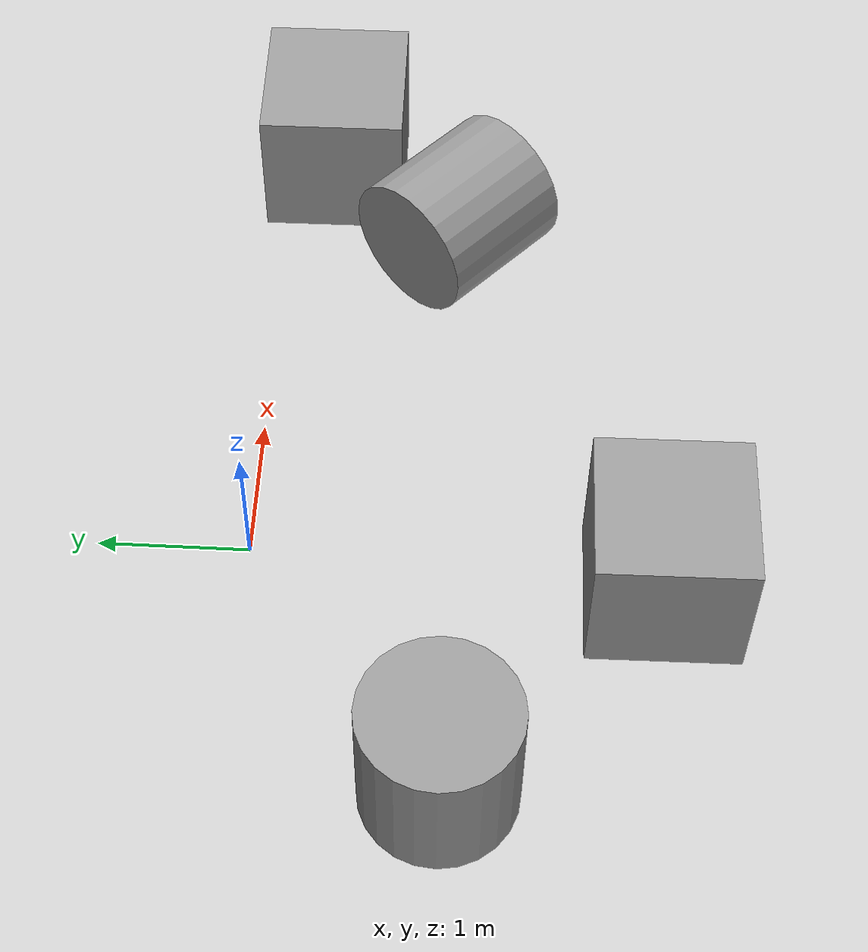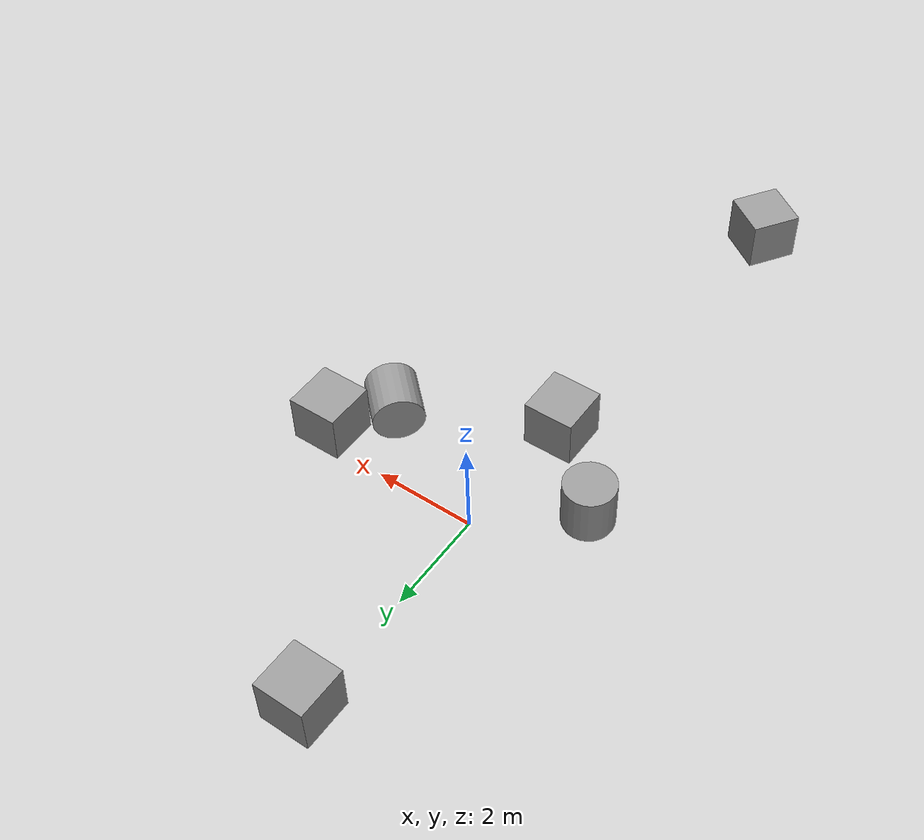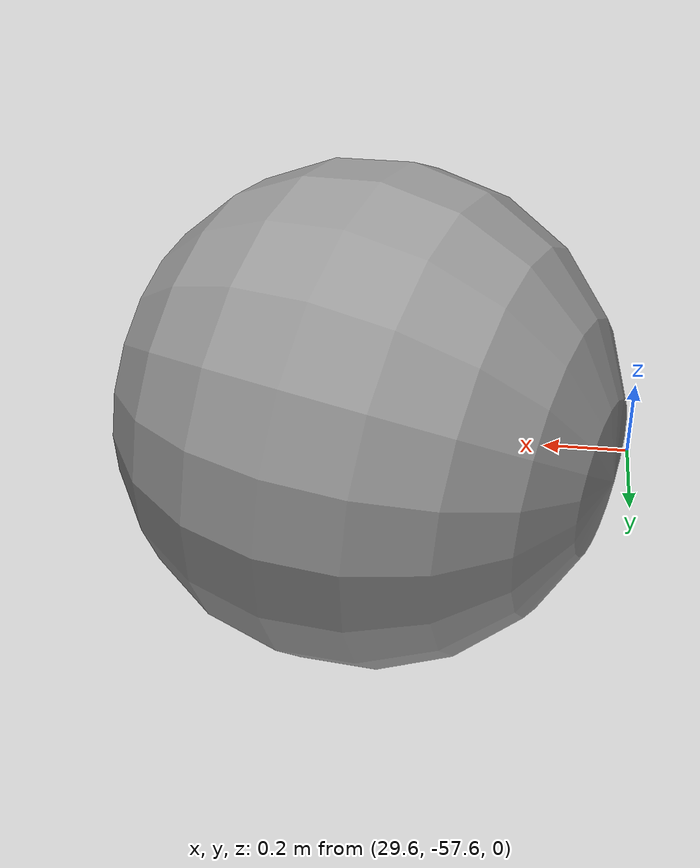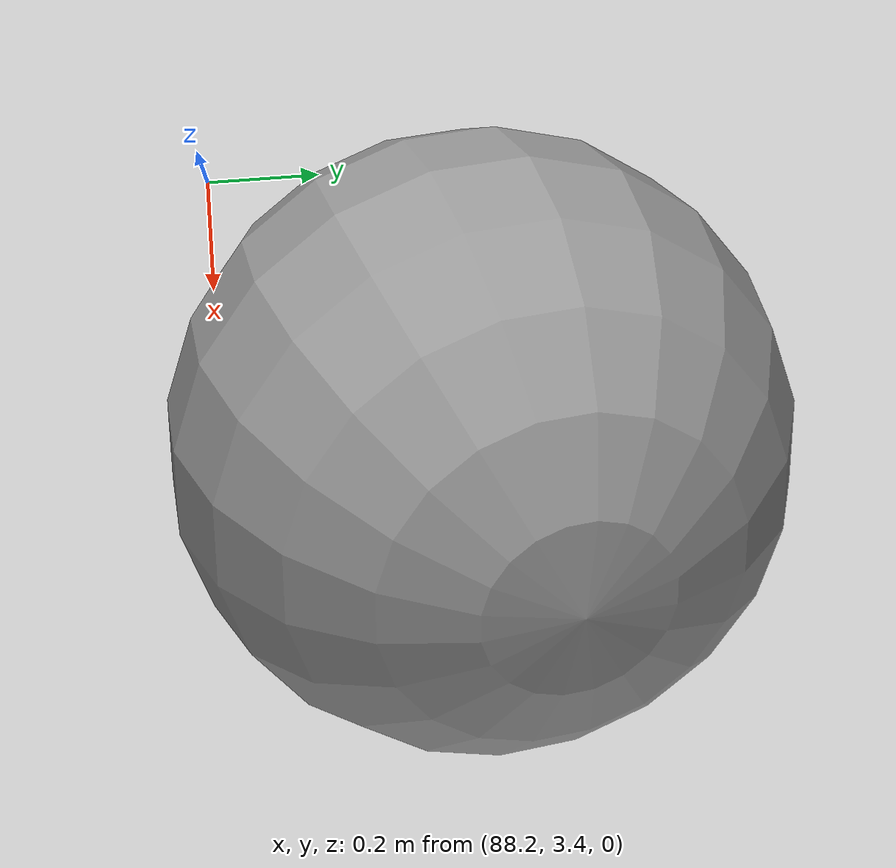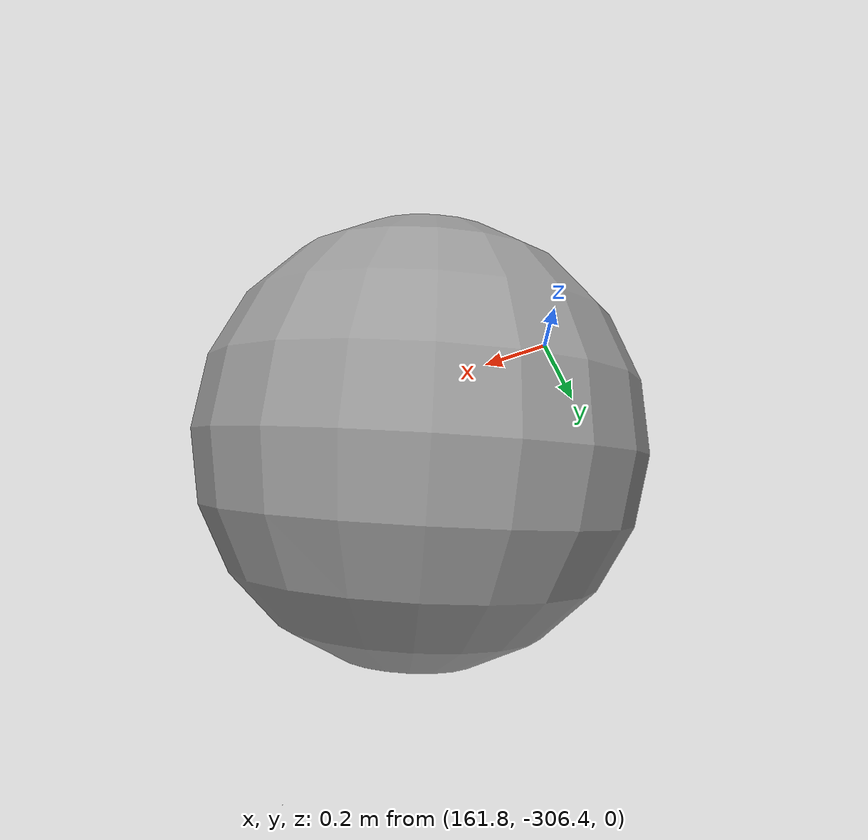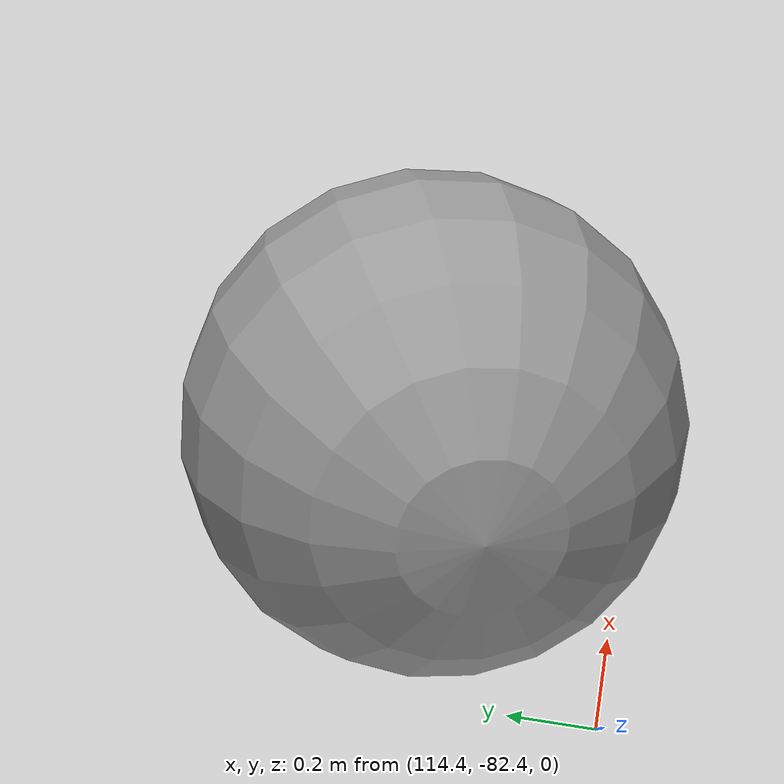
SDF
<sdf version="1.6">
 <world name="default">
  <light name="sun" type="directional">
   <pose>0 0 10 0 -0 0</pose>
   <diffuse>0.8 0.8 0.8 1</diffuse>
   <specular>0.2 0.2 0.2 1</specular>
   <attenuation>
    <range>1000</range>
    <constant>0.9</constant>
    <linear>0.01</linear>
    <quadratic>0.001</quadratic>
   </attenuation>
   <direction>-0.5 0.1 -0.9</direction>
  </light>
  <model name="ground_plane">
   <static>1</static>
   <link name="link">
    <collision name="collision">
     <geometry><plane><normal>0 0 1</normal><size>100 100</size></plane></geometry>
     <surface><friction><ode><mu>100</mu><mu2>50</mu2></ode></friction></surface>
    </collision>
    <visual name="visual">
     <cast_shadows>0</cast_shadows>
     <geometry><plane><normal>0 0 1</normal><size>100 100</size></plane></geometry>
     <material>
      <script><uri>file://media/materials/scripts/gazebo.material</uri><name>Gazebo/Grey</name></script>
     </material>
    </visual>
   </link>
  </model>
  <gravity>0 0 -9.8</gravity>
  <magnetic_field>6e-06 2.3e-05 -4.2e-05</magnetic_field>
  <atmosphere type="adiabatic"/>
  <physics name="default_physics" default="0" type="ode">
   <max_step_size>0.001</max_step_size>
   <real_time_factor>1</real_time_factor>
   <real_time_update_rate>1000</real_time_update_rate>
  </physics>
  <scene><ambient>0.4 0.4 0.4 1</ambient><background>0.7 0.7 0.7 1</background><shadows>1</shadows></scene>
  <spherical_coordinates>
   <surface_model>EARTH_WGS84</surface_model>
   <latitude_deg>0</latitude_deg>
   <longitude_deg>0</longitude_deg>
   <elevation>0</elevation>
   <heading_deg>0</heading_deg>
  </spherical_coordinates>
  <model name="unit_box">
   <pose>-0.008882 4.52766 0.5 0 -0 0</pose>
   <link name="link">
    <inertial>
     <mass>1</mass>
     <inertia>
      <ixx>0.166667</ixx>
      <ixy>0</ixy>
      <ixz>0</ixz>
      <iyy>0.166667</iyy>
      <iyz>0</iyz>
      <izz>0.166667</izz>
     </inertia>
    </inertial>
    <collision name="collision"><geometry><box><size>1 1 1</size></box></geometry></collision>
    <visual name="visual">
     <geometry><box><size>1 1 1</size></box></geometry>
     <material>
      <script><name>Gazebo/Grey</name><uri>file://media/materials/scripts/gazebo.material</uri></script>
     </material>
    </visual>
   </link>
   <plugin name="animator" filename="libgazebo_tochanek_animator.so">
    <update_rate>100</update_rate>
    <cv>
     <point><x>0.0</x><y>5.0</y><z>0.5</z></point>
     <point><x>1.0</x><y>-1.0</y><z>0.5</z></point>
     <point><x>0.0</x><y>2.0</y><z>0.5</z></point>
    </cv>
    <total_time>10.0</total_time>
   </plugin>
  </model>
  <model name="unit_sphere">
   <pose>114.929 -81.9585 0.5 2.6252 0.448511 2.66328</pose>
   <link name="link">
    <inertial>
     <mass>1</mass>
     <inertia><ixx>0.1</ixx><ixy>0</ixy><ixz>0</ixz><iyy>0.1</iyy><iyz>0</iyz><izz>0.1</izz></inertia>
    </inertial>
    <collision name="collision"><geometry><sphere><radius>0.5</radius></sphere></geometry></collision>
    <visual name="visual">
     <geometry><sphere><radius>0.5</radius></sphere></geometry>
     <material>
      <script><name>Gazebo/Grey</name><uri>file://media/materials/scripts/gazebo.material</uri></script>
     </material>
    </visual>
   </link>
  </model>
  <model name="unit_sphere_0">
   <pose>88.794 3.84896 0.5 -2.69681 0.698597 1.00368</pose>
   <link name="link">
    <inertial>
     <mass>1</mass>
     <inertia><ixx>0.1</ixx><ixy>0</ixy><ixz>0</ixz><iyy>0.1</iyy><iyz>0</iyz><izz>0.1</izz></inertia>
    </inertial>
    <collision name="collision"><geometry><sphere><radius>0.5</radius></sphere></geometry></collision>
    <visual name="visual">
     <geometry><sphere><radius>0.5</radius></sphere></geometry>
     <material>
      <script><name>Gazebo/Grey</name><uri>file://media/materials/scripts/gazebo.material</uri></script>
     </material>
    </visual>
   </link>
  </model>
  <model name="unit_box_0">
   <pose>-0.18714 -2.6797 0.499995 -0 -1e-05 0.011005</pose>
   <link name="link">
    <inertial>
     <mass>1</mass>
     <inertia>
      <ixx>0.166667</ixx>
      <ixy>0</ixy>
      <ixz>0</ixz>
      <iyy>0.166667</iyy>
      <iyz>0</iyz>
      <izz>0.166667</izz>
     </inertia>
    </inertial>
    <collision name="collision"><geometry><box><size>1 1 1</size></box></geometry></collision>
    <visual name="visual">
     <geometry><box><size>1 1 1</size></box></geometry>
     <material>
      <script><name>Gazebo/Grey</name><uri>file://media/materials/scripts/gazebo.material</uri></script>
     </material>
    </visual>
   </link>
  </model>
  <model name="unit_sphere_1">
   <pose>30.1678 -57.0937 0.5 -1.5732 0.206597 1.24638</pose>
   <link name="link">
    <inertial>
     <mass>1</mass>
     <inertia><ixx>0.1</ixx><ixy>0</ixy><ixz>0</ixz><iyy>0.1</iyy><iyz>0</iyz><izz>0.1</izz></inertia>
    </inertial>
    <collision name="collision"><geometry><sphere><radius>0.5</radius></sphere></geometry></collision>
    <visual name="visual">
     <geometry><sphere><radius>0.5</radius></sphere></geometry>
     <material>
      <script><name>Gazebo/Grey</name><uri>file://media/materials/scripts/gazebo.material</uri></script>
     </material>
    </visual>
   </link>
  </model>
  <model name="unit_box_1">
   <pose>3.39334 -0.327484 0.499995 0 1e-05 0.009368</pose>
   <link name="link">
    <inertial>
     <mass>1</mass>
     <inertia>
      <ixx>0.166667</ixx>
      <ixy>0</ixy>
      <ixz>0</ixz>
      <iyy>0.166667</iyy>
      <iyz>0</iyz>
      <izz>0.166667</izz>
     </inertia>
    </inertial>
    <collision name="collision"><geometry><box><size>1 1 1</size></box></geometry></collision>
    <visual name="visual">
     <geometry><box><size>1 1 1</size></box></geometry>
     <material>
      <script><name>Gazebo/Grey</name><uri>file://media/materials/scripts/gazebo.material</uri></script>
     </material>
    </visual>
   </link>
  </model>
  <model name="unit_sphere_2">
   <pose>162.372 -305.991 0.5 1.14867 0.228725 -0.521224</pose>
   <link name="link">
    <inertial>
     <mass>1</mass>
     <inertia><ixx>0.1</ixx><ixy>0</ixy><ixz>0</ixz><iyy>0.1</iyy><iyz>0</iyz><izz>0.1</izz></inertia>
    </inertial>
    <collision name="collision"><geometry><sphere><radius>0.5</radius></sphere></geometry></collision>
    <visual name="visual">
     <geometry><sphere><radius>0.5</radius></sphere></geometry>
     <material>
      <script><name>Gazebo/Grey</name><uri>file://media/materials/scripts/gazebo.material</uri></script>
     </material>
    </visual>
   </link>
  </model>
  <model name="unit_cylinder">
   <pose>2.60638 -1.24632 0.5 -1.5708 1.07178 -2.31606</pose>
   <link name="link">
    <inertial>
     <mass>1</mass>
     <inertia><ixx>0.145833</ixx><ixy>0</ixy><ixz>0</ixz><iyy>0.145833</iyy><iyz>0</iyz><izz>0.125</izz></inertia>
    </inertial>
    <collision name="collision">
     <geometry><cylinder><radius>0.5</radius><length>1</length></cylinder></geometry>
    </collision>
    <visual name="visual">
     <geometry><cylinder><radius>0.5</radius><length>1</length></cylinder></geometry>
     <material>
      <script><name>Gazebo/Grey</name><uri>file://media/materials/scripts/gazebo.material</uri></script>
     </material>
    </visual>
   </link>
  </model>
  <model name="unit_cylinder_0">
   <pose>-1.66516 -1.31343 0.499994 -4e-06 -3e-06 0.02227</pose>
   <link name="link">
    <inertial>
     <mass>1</mass>
     <inertia><ixx>0.145833</ixx><ixy>0</ixy><ixz>0</ixz><iyy>0.145833</iyy><iyz>0</iyz><izz>0.125</izz></inertia>
    </inertial>
    <collision name="collision">
     <geometry><cylinder><radius>0.5</radius><length>1</length></cylinder></geometry>
    </collision>
    <visual name="visual">
     <geometry><cylinder><radius>0.5</radius><length>1</length></cylinder></geometry>
     <material>
      <script><name>Gazebo/Grey</name><uri>file://media/materials/scripts/gazebo.material</uri></script>
     </material>
    </visual>
   </link>
  </model>
  <plugin name="collision" filename="libgazebo_dds_model_state.so"><update_rate>100</update_rate></plugin>
  <model name="unit_box_2">
   <pose>-0.715387 -9.4857 0.499995 1.5708 -9e-06 -0.590848</pose>
   <link name="link">
    <inertial>
     <mass>1</mass>
     <inertia>
      <ixx>0.166667</ixx>
      <ixy>0</ixy>
      <ixz>0</ixz>
      <iyy>0.166667</iyy>
      <iyz>0</iyz>
      <izz>0.166667</izz>
     </inertia>
    </inertial>
    <collision name="collision"><geometry><box><size>1 1 1</size></box></geometry></collision>
    <visual name="visual">
     <geometry><box><size>1 1 1</size></box></geometry>
     <material>
      <script><name>Gazebo/Grey</name><uri>file://media/materials/scripts/gazebo.material</uri></script>
     </material>
    </visual>
   </link>
  </model>
 </world>
</sdf>
